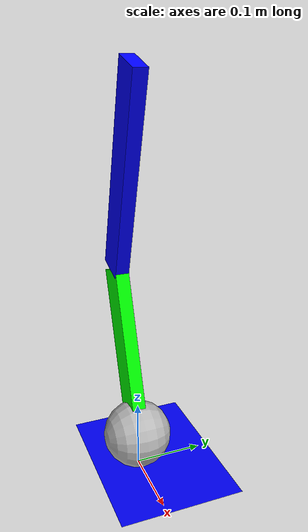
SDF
<sdf version='1.10'>
  <world name='default'>
    <plugin name='gz::sim::systems::Physics' filename='gz-sim-physics-system'/>
    <plugin name='gz::sim::systems::UserCommands' filename='gz-sim-user-commands-system'/>
    <plugin name='gz::sim::systems::SceneBroadcaster' filename='gz-sim-scene-broadcaster-system'/>
    <plugin name='gz::sim::systems::Sensors' filename='gz-sim-sensors-system'>
      <render_engine>ogre2</render_engine>
    </plugin>
    <plugin name='gz::sim::systems::Imu' filename='gz-sim-imu-system'/>
    <scene>
      <shadows>false</shadows>
      <ambient>0.400000006 0.400000006 0.400000006 1</ambient>
      <background>0.699999988 0.699999988 0.699999988 1</background>
    </scene>
    <gui>
      <camera name='user_camera'>
        <pose>0 0 0 0 0 0</pose>
      </camera>
    </gui>
    <physics type='ode'>
      <real_time_update_rate>1000</real_time_update_rate>
      <max_step_size>0.001</max_step_size>
      <real_time_factor>1</real_time_factor>
    </physics>
    <gravity>0 0 -9.8000000000000007</gravity>
    <magnetic_field>5.5644999999999998e-06 2.2875799999999999e-05 -4.2388400000000002e-05</magnetic_field>
    <atmosphere type='adiabatic'/>
    <model name='ground_plane'>
      <static>true</static>
      <link name='ground'>
        <visual name='visual'>
          <geometry>
            <plane>
              <size>2 2</size>
              <normal>0 0 1</normal>
            </plane>
          </geometry>
          <material>
            <ambient>0 0 1 0.5</ambient>
            <diffuse>0 0 1 0.5</diffuse>
            <specular>0 0 1 0.5</specular>
          </material>
        </visual>
        <collision name='collision'>
          <geometry>
            <plane>
              <size>2 2</size>
              <normal>0 0 1</normal>
            </plane>
          </geometry>
          <surface>
            <friction>
              <ode>
                <mu>0.10000000000000001</mu>
                <mu2>0</mu2>
              </ode>
            </friction>
            <bounce/>
            <contact/>
          </surface>
        </collision>
        <pose>0 0 0 0 0 0</pose>
        <inertial>
          <pose>0 0 0 0 0 0</pose>
          <mass>1</mass>
          <inertia>
            <ixx>1</ixx>
            <ixy>0</ixy>
            <ixz>0</ixz>
            <iyy>1</iyy>
            <iyz>0</iyz>
            <izz>1</izz>
          </inertia>
        </inertial>
        <enable_wind>false</enable_wind>
      </link>
      <pose>0 0 0 0 0 0</pose>
      <self_collide>false</self_collide>
    </model>
    <model name='robot'>
      <joint name='slider_joint' type='prismatic'>
        <pose>0 0 0 0 0 0</pose>
        <parent>world</parent>
        <child>base_link</child>
        <axis>
          <xyz>0 0 1</xyz>
          <limit>
            <lower>-10</lower>
            <upper>10</upper>
            <effort>0</effort>
            <velocity>100</velocity>
            <stiffness>100000000</stiffness>
            <dissipation>1</dissipation>
          </limit>
          <dynamics>
            <spring_reference>0</spring_reference>
            <spring_stiffness>0</spring_stiffness>
            <damping>0</damping>
            <friction>0.10000000000000001</friction>
          </dynamics>
        </axis>
      </joint>
      <link name='base_link'>
        <pose>0 0 1 0 0 0</pose>
        <inertial>
          <pose>0 0 0 0 0 0</pose>
          <mass>0.01</mass>
          <inertia>
            <ixx>0.01</ixx>
            <ixy>0</ixy>
            <ixz>0</ixz>
            <iyy>0.01</iyy>
            <iyz>0</iyz>
            <izz>0.01</izz>
          </inertia>
        </inertial>
        <sensor name='imu' type='imu'>
          <pose>0 0 0 0 0 0</pose>
          <topic>/model/robot/sensors/imu</topic>
          <update_rate>100</update_rate>
          <enable_metrics>false</enable_metrics>
          <imu>
            <orientation_reference_frame>
              <localization>ENU</localization>
              <custom_rpy>0 0 0</custom_rpy>
              <grav_dir_x>1 0 0</grav_dir_x>
            </orientation_reference_frame>
            <angular_velocity>
              <x>
                <noise type='none'>
                  <mean>0</mean>
                  <stddev>0</stddev>
                  <bias_mean>0</bias_mean>
                  <bias_stddev>0</bias_stddev>
                  <dynamic_bias_stddev>0</dynamic_bias_stddev>
                  <dynamic_bias_correlation_time>0</dynamic_bias_correlation_time>
                  <precision>0</precision>
                </noise>
              </x>
              <y>
                <noise type='none'>
                  <mean>0</mean>
                  <stddev>0</stddev>
                  <bias_mean>0</bias_mean>
                  <bias_stddev>0</bias_stddev>
                  <dynamic_bias_stddev>0</dynamic_bias_stddev>
                  <dynamic_bias_correlation_time>0</dynamic_bias_correlation_time>
                  <precision>0</precision>
                </noise>
              </y>
              <z>
                <noise type='none'>
                  <mean>0</mean>
                  <stddev>0</stddev>
                  <bias_mean>0</bias_mean>
                  <bias_stddev>0</bias_stddev>
                  <dynamic_bias_stddev>0</dynamic_bias_stddev>
                  <dynamic_bias_correlation_time>0</dynamic_bias_correlation_time>
                  <precision>0</precision>
                </noise>
              </z>
            </angular_velocity>
            <linear_acceleration>
              <x>
                <noise type='none'>
                  <mean>0</mean>
                  <stddev>0</stddev>
                  <bias_mean>0</bias_mean>
                  <bias_stddev>0</bias_stddev>
                  <dynamic_bias_stddev>0</dynamic_bias_stddev>
                  <dynamic_bias_correlation_time>0</dynamic_bias_correlation_time>
                  <precision>0</precision>
                </noise>
              </x>
              <y>
                <noise type='none'>
                  <mean>0</mean>
                  <stddev>0</stddev>
                  <bias_mean>0</bias_mean>
                  <bias_stddev>0</bias_stddev>
                  <dynamic_bias_stddev>0</dynamic_bias_stddev>
                  <dynamic_bias_correlation_time>0</dynamic_bias_correlation_time>
                  <precision>0</precision>
                </noise>
              </y>
              <z>
                <noise type='none'>
                  <mean>0</mean>
                  <stddev>0</stddev>
                  <bias_mean>0</bias_mean>
                  <bias_stddev>0</bias_stddev>
                  <dynamic_bias_stddev>0</dynamic_bias_stddev>
                  <dynamic_bias_correlation_time>0</dynamic_bias_correlation_time>
                  <precision>0</precision>
                </noise>
              </z>
            </linear_acceleration>
            <enable_orientation>true</enable_orientation>
          </imu>
        </sensor>
        <enable_wind>false</enable_wind>
      </link>
      <joint name='hip_joint' type='revolute'>
        <pose>0 0 0 0 0 0</pose>
        <parent>base_link</parent>
        <child>hip_link</child>
        <axis>
          <xyz>0 0 1</xyz>
          <limit>
            <lower>-3.1415926535897931</lower>
            <upper>3.1415926535897931</upper>
            <effort>10.5</effort>
            <velocity>62.899999999999999</velocity>
            <stiffness>100000000</stiffness>
            <dissipation>1</dissipation>
          </limit>
          <dynamics>
            <spring_reference>0</spring_reference>
            <spring_stiffness>0</spring_stiffness>
            <damping>0.10000000000000001</damping>
            <friction>0.10000000000000001</friction>
          </dynamics>
        </axis>
      </joint>
      <link name='hip_link'>
        <pose>0 0 1.0000007468802252 1.570796326794893 -1.2816036801152466 1.362578425092422e-15</pose>
        <inertial>
          <pose>0 0 0 0 0 0</pose>
          <mass>1</mass>
          <inertia>
            <ixx>0.01</ixx>
            <ixy>0</ixy>
            <ixz>0</ixz>
            <iyy>0.01</iyy>
            <iyz>0</iyz>
            <izz>0.01</izz>
          </inertia>
        </inertial>
        <collision name='hip_link_collision'>
          <pose>-0.14999999999999999 0 0 0 0 0</pose>
          <geometry>
            <box>
              <size>0.29999999999999999 0.050000000000000003 0.02</size>
            </box>
          </geometry>
          <surface>
            <friction>
              <ode/>
            </friction>
            <bounce/>
            <contact/>
          </surface>
        </collision>
        <visual name='hip_link_visual'>
          <pose>-0.14999999999999999 0 0 0 0 0</pose>
          <geometry>
            <box>
              <size>0.29999999999999999 0.050000000000000003 0.02</size>
            </box>
          </geometry>
          <material>
            <diffuse>0 0 1 1</diffuse>
            <ambient>0 0 1 1</ambient>
          </material>
        </visual>
        <enable_wind>false</enable_wind>
      </link>
      <joint name='knee_joint' type='revolute'>
        <pose>0 -2.7755575615628914e-17 5.5511151231257827e-17 0 0 0</pose>
        <parent>hip_link</parent>
        <child>knee_link</child>
        <axis>
          <xyz>0 0 1</xyz>
          <limit>
            <lower>-3.1415926535897931</lower>
            <upper>3.1415926535897931</upper>
            <effort>10.5</effort>
            <velocity>62.899999999999999</velocity>
            <stiffness>100000000</stiffness>
            <dissipation>1</dissipation>
          </limit>
          <dynamics>
            <spring_reference>0</spring_reference>
            <spring_stiffness>0</spring_stiffness>
            <damping>0.10000000000000001</damping>
            <friction>0.10000000000000001</friction>
          </dynamics>
        </axis>
      </joint>
      <link name='knee_link'>
        <pose>-0.085553533810573151 3.9336064076965365e-16 0.71245841080148786 -1.5707963267949012 -1.2360619644127184 -3.1415926535897887</pose>
        <inertial>
          <pose>0 0 0 0 0 0</pose>
          <mass>1</mass>
          <inertia>
            <ixx>0.01</ixx>
            <ixy>0</ixy>
            <ixz>0</ixz>
            <iyy>0.01</iyy>
            <iyz>0</iyz>
            <izz>0.01</izz>
          </inertia>
        </inertial>
        <collision name='knee_link_collision'>
          <pose>-0.125 0 0 0 0 0</pose>
          <geometry>
            <box>
              <size>0.25 0.050000000000000003 0.02</size>
            </box>
          </geometry>
          <surface>
            <friction>
              <ode/>
            </friction>
            <bounce/>
            <contact/>
          </surface>
        </collision>
        <visual name='knee_link_visual'>
          <pose>-0.125 0 0 0 0 0</pose>
          <geometry>
            <box>
              <size>0.25 0.050000000000000003 0.02</size>
            </box>
          </geometry>
          <material>
            <diffuse>0 1 0 1</diffuse>
            <ambient>0 1 0 1</ambient>
          </material>
        </visual>
        <enable_wind>false</enable_wind>
      </link>
      <joint name='contact_joint' type='revolute'>
        <pose>0 0 0 0 0 0</pose>
        <parent>knee_link</parent>
        <child>foot_link</child>
        <axis>
          <xyz>0 0 1</xyz>
          <limit>
            <lower>0</lower>
            <upper>0</upper>
            <effort>1.0000000000000001e-05</effort>
            <velocity>1.0000000000000001e-05</velocity>
            <stiffness>100000000</stiffness>
            <dissipation>1</dissipation>
          </limit>
          <dynamics>
            <spring_reference>0</spring_reference>
            <spring_stiffness>0</spring_stiffness>
            <damping>0</damping>
            <friction>0</friction>
          </dynamics>
        </axis>
      </joint>
      <link name='foot_link'>
        <pose>-0.0034239736735265924 6.7889028380960428e-16 0.47633400835890394 -1.5707963267948919 -1.2360619954356582 3.14159265358979</pose>
        <inertial>
          <pose>0 0 0 0 0 0</pose>
          <mass>0.01</mass>
          <inertia>
            <ixx>0.01</ixx>
            <ixy>0</ixy>
            <ixz>0</ixz>
            <iyy>0.01</iyy>
            <iyz>0</iyz>
            <izz>0.01</izz>
          </inertia>
        </inertial>
        <collision name='foot_link_collision'>
          <pose>0 0 0 0 0 0</pose>
          <geometry>
            <sphere>
              <radius>0.050000000000000003</radius>
            </sphere>
          </geometry>
          <surface>
            <friction>
              <ode/>
            </friction>
            <bounce/>
            <contact/>
          </surface>
        </collision>
        <visual name='foot_link_visual'>
          <pose>0 0 0 0 0 0</pose>
          <geometry>
            <sphere>
              <radius>0.050000000000000003</radius>
            </sphere>
          </geometry>
        </visual>
        <sensor name='foot_contact' type='contact'>
          <always_on>true</always_on>
          <update_rate>100</update_rate>
          <contact>
            <collision>foot_link_collision</collision>
            <topic>/model/robot/sensors/contact</topic>
          </contact>
        </sensor>
        <enable_wind>false</enable_wind>
      </link>
      <plugin name='gz::sim::systems::JointStatePublisher' filename='gz-sim-joint-state-publisher-system'>
        <topic>model/robot/joint_states</topic>
        <joint_name>hip_joint</joint_name>
        <joint_name>knee_joint</joint_name>
      </plugin>
      <plugin name='gz::sim::systems::Contact' filename='gz-sim-contact-system'/>
      <plugin name='gz::sim::systems::JointPositionController' filename='gz-sim-joint-position-controller-system'>
        <joint_name>hip_joint</joint_name>
        <use_force_commands>true</use_force_commands>
        <sub_topic>joint/hip_joint/0/cmd_pos</sub_topic>
        <p_gain>200.0</p_gain>
        <i_gain>0.0</i_gain>
        <d_gain>50.0</d_gain>
        <i_max>1</i_max>
        <i_min>-1</i_min>
        <cmd_max>100</cmd_max>
        <cmd_min>-100</cmd_min>
        <cmd_offset>0.0</cmd_offset>
        <initial_position>-0.3</initial_position>
      </plugin>
      <plugin name='gz::sim::systems::JointPositionController' filename='gz-sim-joint-position-controller-system'>
        <joint_name>knee_joint</joint_name>
        <use_force_commands>true</use_force_commands>
        <sub_topic>joint/knee_joint/0/cmd_pos</sub_topic>
        <p_gain>100.0</p_gain>
        <i_gain>0.0</i_gain>
        <d_gain>10.0</d_gain>
        <i_max>1</i_max>
        <i_min>-1</i_min>
        <cmd_max>100</cmd_max>
        <cmd_min>-100</cmd_min>
        <cmd_offset>0.0</cmd_offset>
        <initial_position>0.6</initial_position>
      </plugin>
      <frame name='imu_joint' attached_to='base_link'>
        <pose>0 0 0 0 0 0</pose>
      </frame>
      <frame name='imu_link' attached_to='imu_joint'>
        <pose>0 0 0 0 0 0</pose>
      </frame>
      <pose>0 0 -0.42633403118146784 0 0 0</pose>
      <static>false</static>
      <self_collide>false</self_collide>
    </model>
    <light name='sun' type='directional'>
      <pose>0 0 10 0 0 0</pose>
      <cast_shadows>true</cast_shadows>
      <intensity>1</intensity>
      <direction>-0.5 0.10000000000000001 -0.90000000000000002</direction>
      <diffuse>0.800000012 0.800000012 0.800000012 1</diffuse>
      <specular>0.200000003 0.200000003 0.200000003 1</specular>
      <attenuation>
        <range>1000</range>
        <linear>0.01</linear>
        <constant>0.90000000000000002</constant>
        <quadratic>0.001</quadratic>
      </attenuation>
      <spot>
        <inner_angle>0</inner_angle>
        <outer_angle>0</outer_angle>
        <falloff>0</falloff>
      </spot>
    </light>
  </world>
</sdf>
